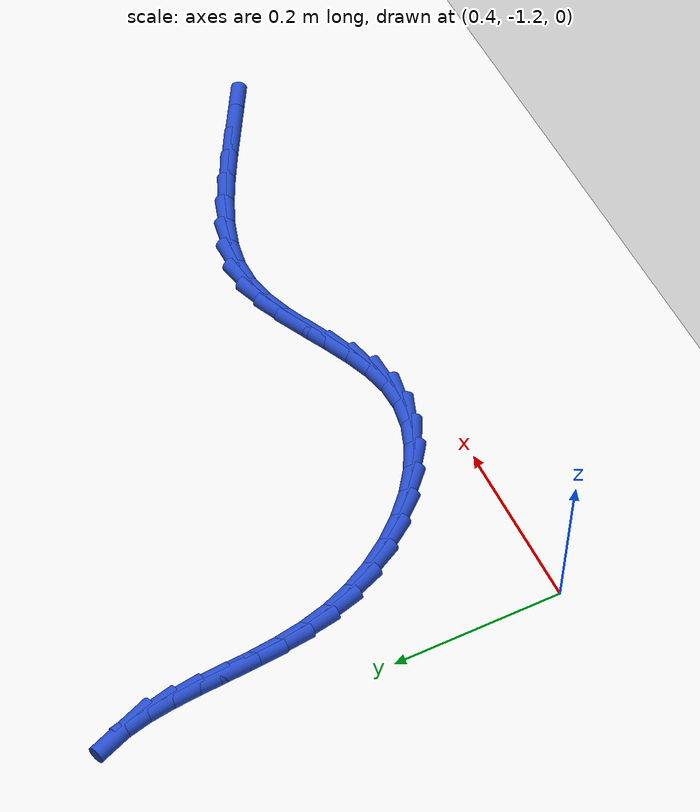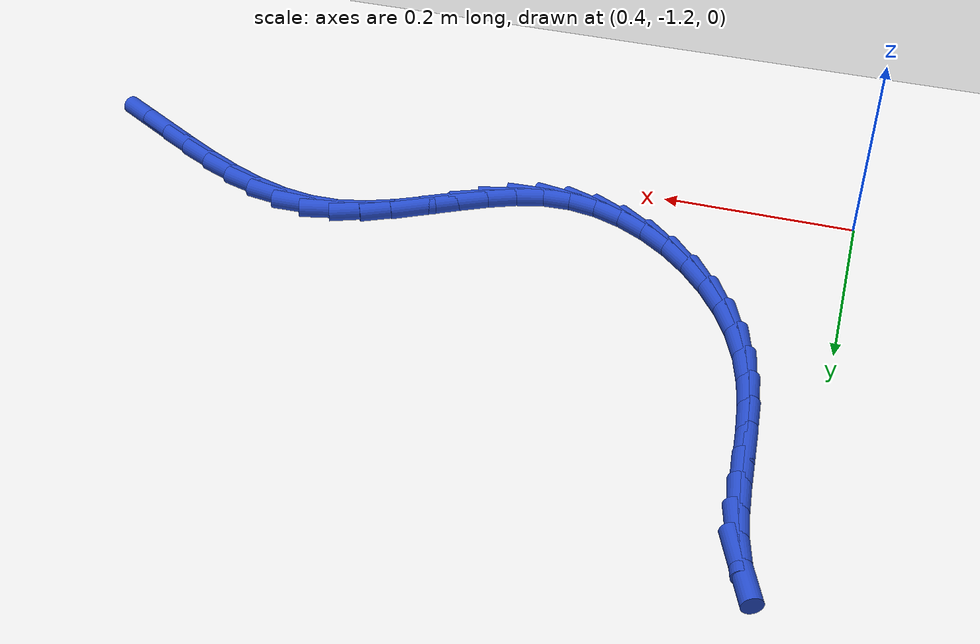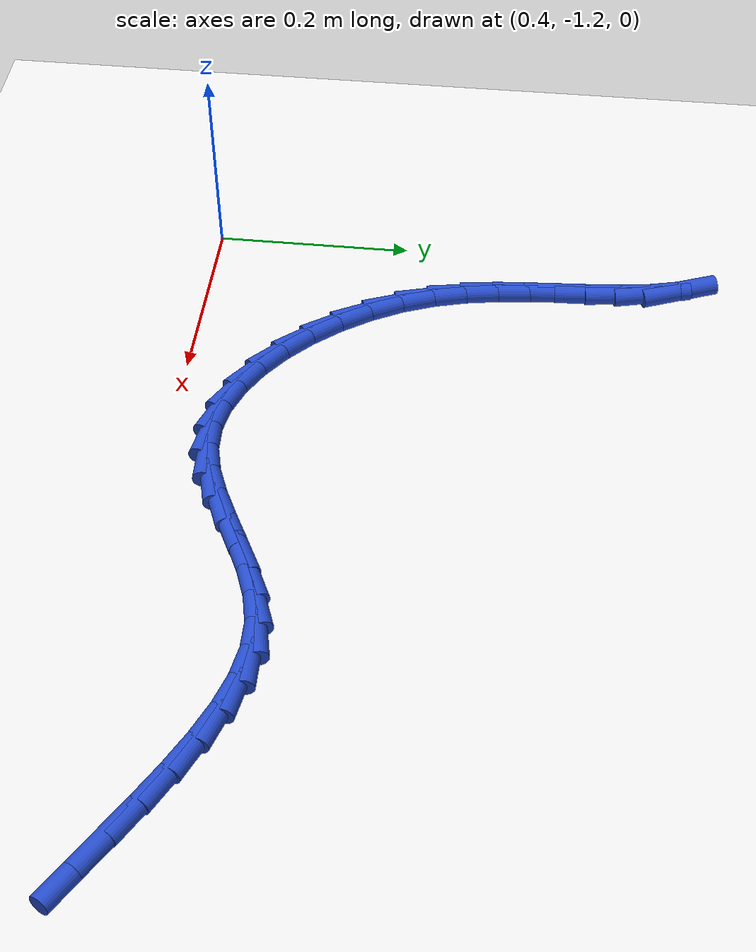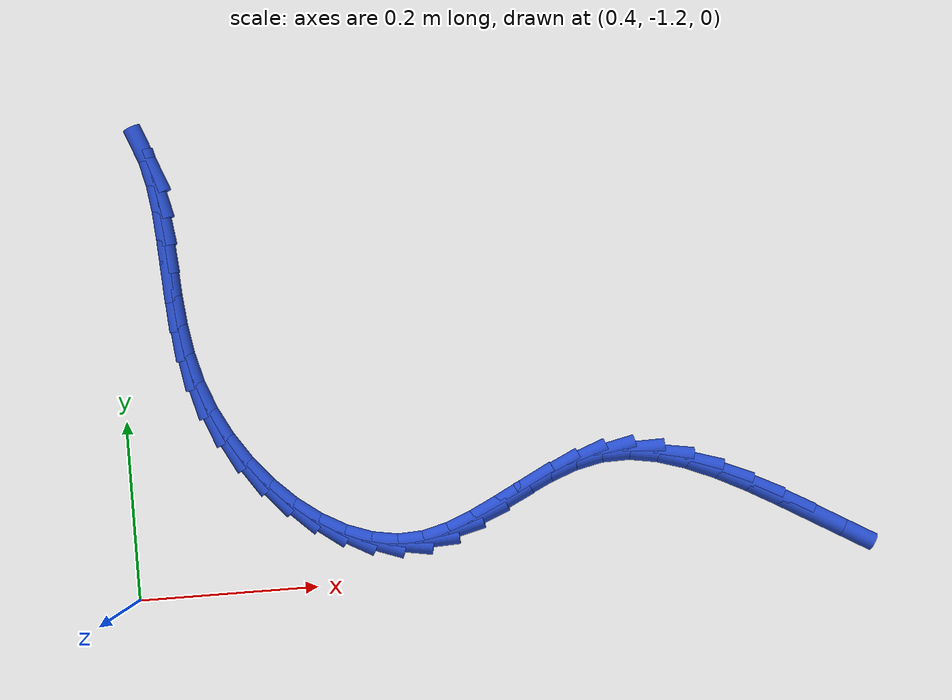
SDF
<sdf version="1.6">
 <world name="default">
  <model name="ground_plane">
   <static>1</static>
   <link name="link">
    <collision name="collision">
     <geometry><plane><normal>0 0 1</normal><size>100 100</size></plane></geometry>
     <surface><friction><ode><mu>100</mu><mu2>50</mu2></ode></friction></surface>
    </collision>
    <visual name="visual">
     <cast_shadows>0</cast_shadows>
     <geometry><plane><normal>0 0 1</normal><size>100 100</size></plane></geometry>
     <material>
      <script><uri>file://media/materials/scripts/gazebo.material</uri><name>Gazebo/WhiteGlow</name></script>
     </material>
    </visual>
   </link>
  </model>
  <model name="line">
   <link name="link_208">
    <pose>1.187287591091131 -1.175671241021125 0.01 0 1.57 -0.5259638932448317</pose>
    <collision name="collision">
     <geometry><cylinder><radius>0.01</radius><length>0.08</length></cylinder></geometry>
    </collision>
    <visual name="visual">
     <material>
      <script><name>Gazebo/Blue</name><uri>file://media/materials/scripts/gazebo.material</uri></script>
     </material>
     <geometry><cylinder><radius>0.01</radius><length>0.08</length></cylinder></geometry>
    </visual>
   </link>
   <link name="link_209">
    <pose>1.15455150291516 -1.1566676774169442 0.01 0 1.57 -0.5260082754048285</pose>
    <collision name="collision">
     <geometry><cylinder><radius>0.01</radius><length>0.08</length></cylinder></geometry>
    </collision>
    <visual name="visual">
     <material>
      <script><name>Gazebo/Blue</name><uri>file://media/materials/scripts/gazebo.material</uri></script>
     </material>
     <geometry><cylinder><radius>0.01</radius><length>0.08</length></cylinder></geometry>
    </visual>
   </link>
   <link name="link_210">
    <pose>1.121501706907465 -1.1374800427071075 0.01 0 1.57 -0.5055946320107141</pose>
    <collision name="collision">
     <geometry><cylinder><radius>0.01</radius><length>0.08</length></cylinder></geometry>
    </collision>
    <visual name="visual">
     <material>
      <script><name>Gazebo/Blue</name><uri>file://media/materials/scripts/gazebo.material</uri></script>
     </material>
     <geometry><cylinder><radius>0.01</radius><length>0.08</length></cylinder></geometry>
    </visual>
   </link>
   <link name="link_211">
    <pose>1.088318215288776 -1.119110021242449 0.01 0 1.57 -0.46321625086526097</pose>
    <collision name="collision">
     <geometry><cylinder><radius>0.01</radius><length>0.08</length></cylinder></geometry>
    </collision>
    <visual name="visual">
     <material>
      <script><name>Gazebo/Blue</name><uri>file://media/materials/scripts/gazebo.material</uri></script>
     </material>
     <geometry><cylinder><radius>0.01</radius><length>0.08</length></cylinder></geometry>
    </visual>
   </link>
   <link name="link_212">
    <pose>1.0551810402798263 -1.102559297373806 0.01 0 1.57 -0.39522830994297115</pose>
    <collision name="collision">
     <geometry><cylinder><radius>0.01</radius><length>0.08</length></cylinder></geometry>
    </collision>
    <visual name="visual">
     <material>
      <script><name>Gazebo/Blue</name><uri>file://media/materials/scripts/gazebo.material</uri></script>
     </material>
     <geometry><cylinder><radius>0.01</radius><length>0.08</length></cylinder></geometry>
    </visual>
   </link>
   <link name="link_213">
    <pose>1.0222701941013452 -1.0888295554520138 0.01 0 1.57 -0.29584625016699223</pose>
    <collision name="collision">
     <geometry><cylinder><radius>0.01</radius><length>0.08</length></cylinder></geometry>
    </collision>
    <visual name="visual">
     <material>
      <script><name>Gazebo/Blue</name><uri>file://media/materials/scripts/gazebo.material</uri></script>
     </material>
     <geometry><cylinder><radius>0.01</radius><length>0.08</length></cylinder></geometry>
    </visual>
   </link>
   <link name="link_214">
    <pose>0.989765688974066 -1.0789224798279087 0.01 0 1.57 -0.15791654261286225</pose>
    <collision name="collision">
     <geometry><cylinder><radius>0.01</radius><length>0.08</length></cylinder></geometry>
    </collision>
    <visual name="visual">
     <material>
      <script><name>Gazebo/Blue</name><uri>file://media/materials/scripts/gazebo.material</uri></script>
     </material>
     <geometry><cylinder><radius>0.01</radius><length>0.08</length></cylinder></geometry>
    </visual>
   </link>
   <link name="link_215">
    <pose>0.9578475371187192 -1.0738397548523264 0.01 0 1.57 0.023726483898503</pose>
    <collision name="collision">
     <geometry><cylinder><radius>0.01</radius><length>0.08</length></cylinder></geometry>
    </collision>
    <visual name="visual">
     <material>
      <script><name>Gazebo/Blue</name><uri>file://media/materials/scripts/gazebo.material</uri></script>
     </material>
     <geometry><cylinder><radius>0.01</radius><length>0.08</length></cylinder></geometry>
    </visual>
   </link>
   <link name="link_216">
    <pose>0.9266952189034101 -1.074579028557804 0.01 0 1.57 0.2196651632083731</pose>
    <collision name="collision">
     <geometry><cylinder><radius>0.01</radius><length>0.08</length></cylinder></geometry>
    </collision>
    <visual name="visual">
     <material>
      <script><name>Gazebo/Blue</name><uri>file://media/materials/scripts/gazebo.material</uri></script>
     </material>
     <geometry><cylinder><radius>0.01</radius><length>0.08</length></cylinder></geometry>
    </visual>
   </link>
   <link name="link_217">
    <pose>0.8963839364471509 -1.0813465639471511 0.01 0 1.57 0.3634409249426437</pose>
    <collision name="collision">
     <geometry><cylinder><radius>0.01</radius><length>0.08</length></cylinder></geometry>
    </collision>
    <visual name="visual">
     <material>
      <script><name>Gazebo/Blue</name><uri>file://media/materials/scripts/gazebo.material</uri></script>
     </material>
     <geometry><cylinder><radius>0.01</radius><length>0.08</length></cylinder></geometry>
    </visual>
   </link>
   <link name="link_218">
    <pose>0.8667602634626258 -1.0926135249042384 0.01 0 1.57 0.4483552671860665</pose>
    <collision name="collision">
     <geometry><cylinder><radius>0.01</radius><length>0.08</length></cylinder></geometry>
    </collision>
    <visual name="visual">
     <material>
      <script><name>Gazebo/Blue</name><uri>file://media/materials/scripts/gazebo.material</uri></script>
     </material>
     <geometry><cylinder><radius>0.01</radius><length>0.08</length></cylinder></geometry>
    </visual>
   </link>
   <link name="link_219">
    <pose>0.8376404538526778 -1.106620973217589 0.01 0 1.57 0.4798788442437227</pose>
    <collision name="collision">
     <geometry><cylinder><radius>0.01</radius><length>0.08</length></cylinder></geometry>
    </collision>
    <visual name="visual">
     <material>
      <script><name>Gazebo/Blue</name><uri>file://media/materials/scripts/gazebo.material</uri></script>
     </material>
     <geometry><cylinder><radius>0.01</radius><length>0.08</length></cylinder></geometry>
    </visual>
   </link>
   <link name="link_220">
    <pose>0.8088407615201461 -1.121609970675727 0.01 0 1.57 0.46029131407506074</pose>
    <collision name="collision">
     <geometry><cylinder><radius>0.01</radius><length>0.08</length></cylinder></geometry>
    </collision>
    <visual name="visual">
     <material>
      <script><name>Gazebo/Blue</name><uri>file://media/materials/scripts/gazebo.material</uri></script>
     </material>
     <geometry><cylinder><radius>0.01</radius><length>0.08</length></cylinder></geometry>
    </visual>
   </link>
   <link name="link_221">
    <pose>0.7801774403678728 -1.1358215790671748 0.01 0 1.57 0.3862282457442277</pose>
    <collision name="collision">
     <geometry><cylinder><radius>0.01</radius><length>0.08</length></cylinder></geometry>
    </collision>
    <visual name="visual">
     <material>
      <script><name>Gazebo/Blue</name><uri>file://media/materials/scripts/gazebo.material</uri></script>
     </material>
     <geometry><cylinder><radius>0.01</radius><length>0.08</length></cylinder></geometry>
    </visual>
   </link>
   <link name="link_222">
    <pose>0.7514667442986972 -1.147496860180457 0.01 0 1.57 0.24967418821699464</pose>
    <collision name="collision">
     <geometry><cylinder><radius>0.01</radius><length>0.08</length></cylinder></geometry>
    </collision>
    <visual name="visual">
     <material>
      <script><name>Gazebo/Blue</name><uri>file://media/materials/scripts/gazebo.material</uri></script>
     </material>
     <geometry><cylinder><radius>0.01</radius><length>0.08</length></cylinder></geometry>
    </visual>
   </link>
   <link name="link_223">
    <pose>0.7225249272154612 -1.1548768758040948 0.01 0 1.57 0.0487821582086975</pose>
    <collision name="collision">
     <geometry><cylinder><radius>0.01</radius><length>0.08</length></cylinder></geometry>
    </collision>
    <visual name="visual">
     <material>
      <script><name>Gazebo/Blue</name><uri>file://media/materials/scripts/gazebo.material</uri></script>
     </material>
     <geometry><cylinder><radius>0.01</radius><length>0.08</length></cylinder></geometry>
    </visual>
   </link>
   <link name="link_224">
    <pose>0.6931986266243308 -1.1563086119197379 0.01 0 1.57 -0.1622628841747499</pose>
    <collision name="collision">
     <geometry><cylinder><radius>0.01</radius><length>0.08</length></cylinder></geometry>
    </collision>
    <visual name="visual">
     <material>
      <script><name>Gazebo/Blue</name><uri>file://media/materials/scripts/gazebo.material</uri></script>
     </material>
     <geometry><cylinder><radius>0.01</radius><length>0.08</length></cylinder></geometry>
    </visual>
   </link>
   <link name="link_225">
    <pose>0.6637199496227277 -1.1514828897016323 0.01 0 1.57 -0.3449642516919669</pose>
    <collision name="collision">
     <geometry><cylinder><radius>0.01</radius><length>0.08</length></cylinder></geometry>
    </collision>
    <visual name="visual">
     <material>
      <script><name>Gazebo/Blue</name><uri>file://media/materials/scripts/gazebo.material</uri></script>
     </material>
     <geometry><cylinder><radius>0.01</radius><length>0.08</length></cylinder></geometry>
    </visual>
   </link>
   <link name="link_226">
    <pose>0.6345859215628458 -1.1410140959748707 0.01 0 1.57 -0.5007073962918057</pose>
    <collision name="collision">
     <geometry><cylinder><radius>0.01</radius><length>0.08</length></cylinder></geometry>
    </collision>
    <visual name="visual">
     <material>
      <script><name>Gazebo/Blue</name><uri>file://media/materials/scripts/gazebo.material</uri></script>
     </material>
     <geometry><cylinder><radius>0.01</radius><length>0.08</length></cylinder></geometry>
    </visual>
   </link>
   <link name="link_227">
    <pose>0.6062987729789648 -1.12553476402027 0.01 0 1.57 -0.6352253376238677</pose>
    <collision name="collision">
     <geometry><cylinder><radius>0.01</radius><length>0.08</length></cylinder></geometry>
    </collision>
    <visual name="visual">
     <material>
      <script><name>Gazebo/Blue</name><uri>file://media/materials/scripts/gazebo.material</uri></script>
     </material>
     <geometry><cylinder><radius>0.01</radius><length>0.08</length></cylinder></geometry>
    </visual>
   </link>
   <link name="link_228">
    <pose>0.579360734405367 -1.1056774271186476 0.01 0 1.57 -0.7549310176437996</pose>
    <collision name="collision">
     <geometry><cylinder><radius>0.01</radius><length>0.08</length></cylinder></geometry>
    </collision>
    <visual name="visual">
     <material>
      <script><name>Gazebo/Blue</name><uri>file://media/materials/scripts/gazebo.material</uri></script>
     </material>
     <geometry><cylinder><radius>0.01</radius><length>0.08</length></cylinder></geometry>
    </visual>
   </link>
   <link name="link_229">
    <pose>0.5542740363763312 -1.0820746185508194 0.01 0 1.57 -0.8657648466942534</pose>
    <collision name="collision">
     <geometry><cylinder><radius>0.01</radius><length>0.08</length></cylinder></geometry>
    </collision>
    <visual name="visual">
     <material>
      <script><name>Gazebo/Blue</name><uri>file://media/materials/scripts/gazebo.material</uri></script>
     </material>
     <geometry><cylinder><radius>0.01</radius><length>0.08</length></cylinder></geometry>
    </visual>
   </link>
   <link name="link_230">
    <pose>0.5315409094261396 -1.0553588715976043 0.01 0 1.57 -0.9730591347952746</pose>
    <collision name="collision">
     <geometry><cylinder><radius>0.01</radius><length>0.08</length></cylinder></geometry>
    </collision>
    <visual name="visual">
     <material>
      <script><name>Gazebo/Blue</name><uri>file://media/materials/scripts/gazebo.material</uri></script>
     </material>
     <geometry><cylinder><radius>0.01</radius><length>0.08</length></cylinder></geometry>
    </visual>
   </link>
   <link name="link_231">
    <pose>0.5116635840890713 -1.0261627195398173 0.01 0 1.57 -1.0817804177354673</pose>
    <collision name="collision">
     <geometry><cylinder><radius>0.01</radius><length>0.08</length></cylinder></geometry>
    </collision>
    <visual name="visual">
     <material>
      <script><name>Gazebo/Blue</name><uri>file://media/materials/scripts/gazebo.material</uri></script>
     </material>
     <geometry><cylinder><radius>0.01</radius><length>0.08</length></cylinder></geometry>
    </visual>
   </link>
   <link name="link_232">
    <pose>0.4951442908994081 -0.9951186956582778 0.01 0 1.57 -1.1967611691060713</pose>
    <collision name="collision">
     <geometry><cylinder><radius>0.01</radius><length>0.08</length></cylinder></geometry>
    </collision>
    <visual name="visual">
     <material>
      <script><name>Gazebo/Blue</name><uri>file://media/materials/scripts/gazebo.material</uri></script>
     </material>
     <geometry><cylinder><radius>0.01</radius><length>0.08</length></cylinder></geometry>
    </visual>
   </link>
   <link name="link_233">
    <pose>0.48248181534347373 -0.9628586521308101 0.01 0 1.57 -1.311052130659483</pose>
    <collision name="collision">
     <geometry><cylinder><radius>0.01</radius><length>0.08</length></cylinder></geometry>
    </collision>
    <visual name="visual">
     <material>
      <script><name>Gazebo/Blue</name><uri>file://media/materials/scripts/gazebo.material</uri></script>
     </material>
     <geometry><cylinder><radius>0.01</radius><length>0.08</length></cylinder></geometry>
    </visual>
   </link>
   <link name="link_234">
    <pose>0.47373017541034707 -0.9299265084050967 0.01 0 1.57 -1.4019317985339503</pose>
    <collision name="collision">
     <geometry><cylinder><radius>0.01</radius><length>0.08</length></cylinder></geometry>
    </collision>
    <visual name="visual">
     <material>
      <script><name>Gazebo/Blue</name><uri>file://media/materials/scripts/gazebo.material</uri></script>
     </material>
     <geometry><cylinder><radius>0.01</radius><length>0.08</length></cylinder></geometry>
    </visual>
   </link>
   <link name="link_235">
    <pose>0.4680641468071582 -0.896692353388609 0.01 0 1.57 -1.4654564169853155</pose>
    <collision name="collision">
     <geometry><cylinder><radius>0.01</radius><length>0.08</length></cylinder></geometry>
    </collision>
    <visual name="visual">
     <material>
      <script><name>Gazebo/Blue</name><uri>file://media/materials/scripts/gazebo.material</uri></script>
     </material>
     <geometry><cylinder><radius>0.01</radius><length>0.08</length></cylinder></geometry>
    </visual>
   </link>
   <link name="link_236">
    <pose>0.4645552975224042 -0.8635058713132799 0.01 0 1.57 -1.5013697287042544</pose>
    <collision name="collision">
     <geometry><cylinder><radius>0.01</radius><length>0.08</length></cylinder></geometry>
    </collision>
    <visual name="visual">
     <material>
      <script><name>Gazebo/Blue</name><uri>file://media/materials/scripts/gazebo.material</uri></script>
     </material>
     <geometry><cylinder><radius>0.01</radius><length>0.08</length></cylinder></geometry>
    </visual>
   </link>
   <link name="link_237">
    <pose>0.46227519554458246 -0.8307167464110452 0.01 0 1.57 -1.5090876971153582</pose>
    <collision name="collision">
     <geometry><cylinder><radius>0.01</radius><length>0.08</length></cylinder></geometry>
    </collision>
    <visual name="visual">
     <material>
      <script><name>Gazebo/Blue</name><uri>file://media/materials/scripts/gazebo.material</uri></script>
     </material>
     <geometry><cylinder><radius>0.01</radius><length>0.08</length></cylinder></geometry>
    </visual>
   </link>
   <link name="link_238">
    <pose>0.4602954088621899 -0.7986746629138364 0.01 0 1.57 -1.4867205294145784</pose>
    <collision name="collision">
     <geometry><cylinder><radius>0.01</radius><length>0.08</length></cylinder></geometry>
    </collision>
    <visual name="visual">
     <material>
      <script><name>Gazebo/Blue</name><uri>file://media/materials/scripts/gazebo.material</uri></script>
     </material>
     <geometry><cylinder><radius>0.01</radius><length>0.08</length></cylinder></geometry>
    </visual>
   </link>
   <link name="link_239">
    <pose>0.4576875054637235 -0.7677293050535893 0.01 0 1.57 -1.4305502149445377</pose>
    <collision name="collision">
     <geometry><cylinder><radius>0.01</radius><length>0.08</length></cylinder></geometry>
    </collision>
    <visual name="visual">
     <material>
      <script><name>Gazebo/Blue</name><uri>file://media/materials/scripts/gazebo.material</uri></script>
     </material>
     <geometry><cylinder><radius>0.01</radius><length>0.08</length></cylinder></geometry>
    </visual>
   </link>
   <link name="link_240">
    <pose>0.45352305333768067 -0.738230357062236 0.01 0 1.57 -1.335225818288073</pose>
    <collision name="collision">
     <geometry><cylinder><radius>0.01</radius><length>0.08</length></cylinder></geometry>
    </collision>
    <visual name="visual">
     <material>
      <script><name>Gazebo/Blue</name><uri>file://media/materials/scripts/gazebo.material</uri></script>
     </material>
     <geometry><cylinder><radius>0.01</radius><length>0.08</length></cylinder></geometry>
    </visual>
   </link>
   <link name="link_241">
    <pose>0.4468736204725583 -0.7105275031717116 0.01 0 1.57 -1.1956980320102486</pose>
    <collision name="collision">
     <geometry><cylinder><radius>0.01</radius><length>0.08</length></cylinder></geometry>
    </collision>
    <visual name="visual">
     <material>
      <script><name>Gazebo/Blue</name><uri>file://media/materials/scripts/gazebo.material</uri></script>
     </material>
     <geometry><cylinder><radius>0.01</radius><length>0.08</length></cylinder></geometry>
    </visual>
   </link>
  </model>
 </world>
</sdf>
